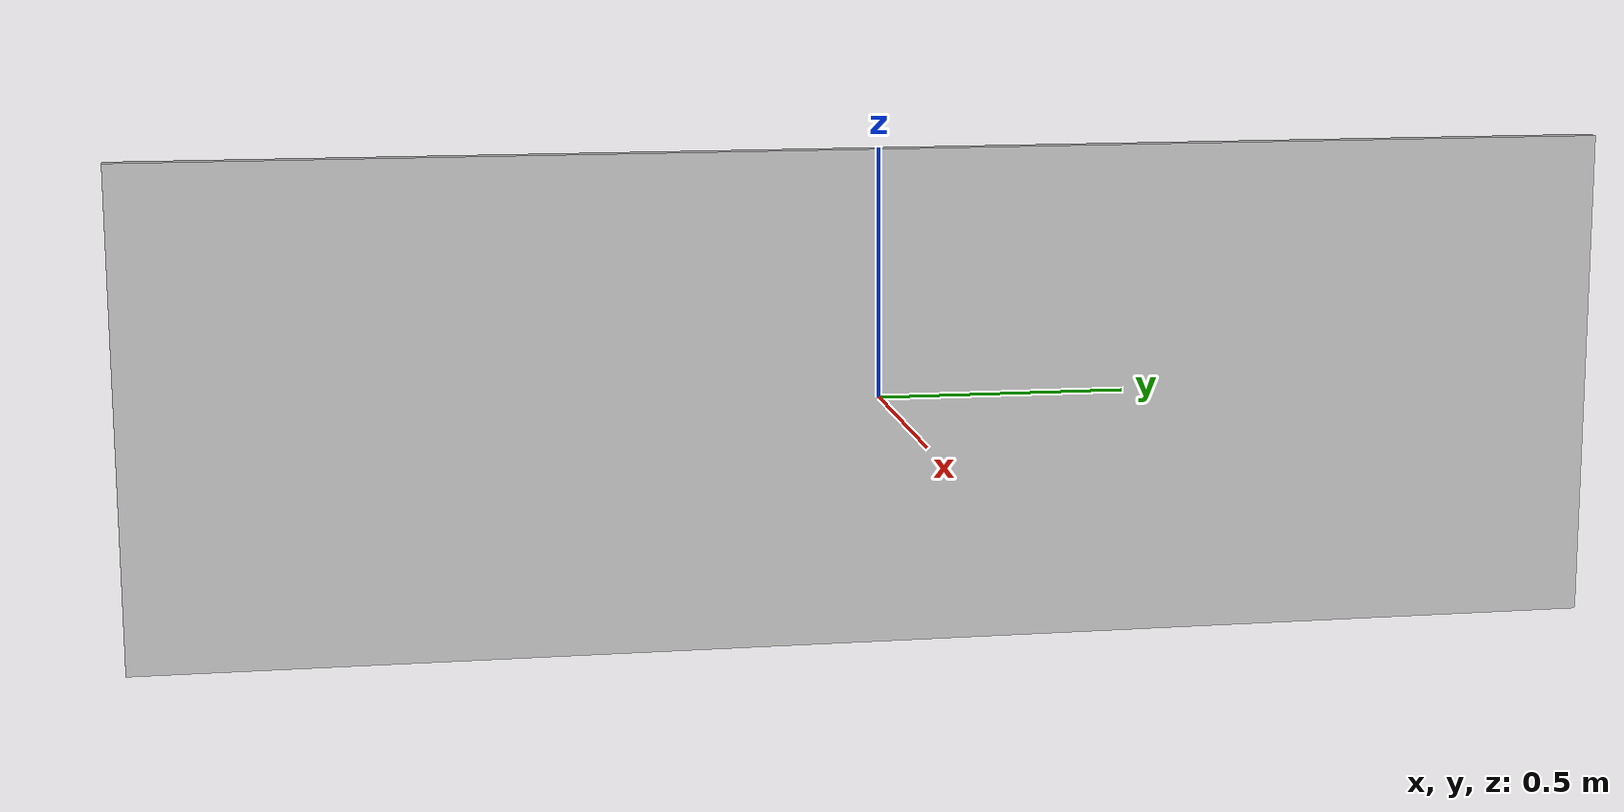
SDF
<?xml version="1.0"?>
<sdf version='1.4'>
  <model name='uio_poster'>
    <link name="link">
      <visual name="visual">
        <geometry>
          <box>
            <size>0.03 2.98 1</size>
          </box>
        </geometry>
        <material>
          <script>
            <uri>model://uio_poster/material/script</uri>
            <uri>model://uio_poster/material/textures</uri>
            <name>Custom/uio_logo</name>
          </script>
        </material>
      </visual>
    </link>
    <static>1</static>
    <allow_auto_disable>1</allow_auto_disable>
  </model>
</sdf>
